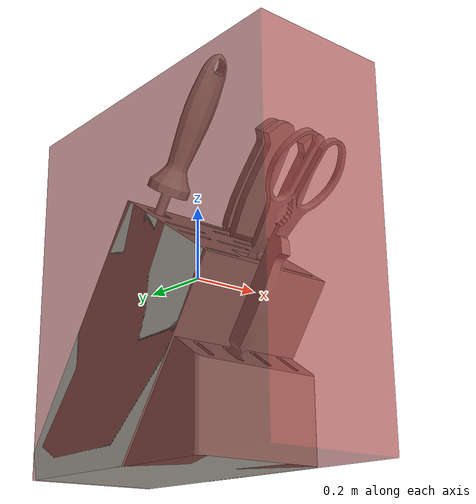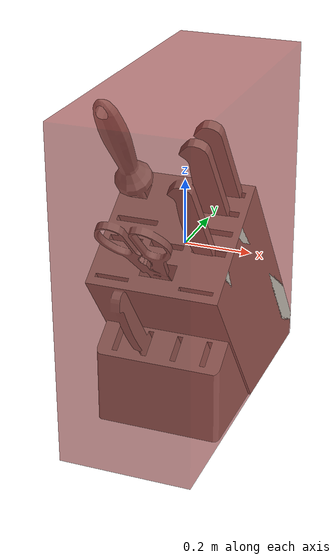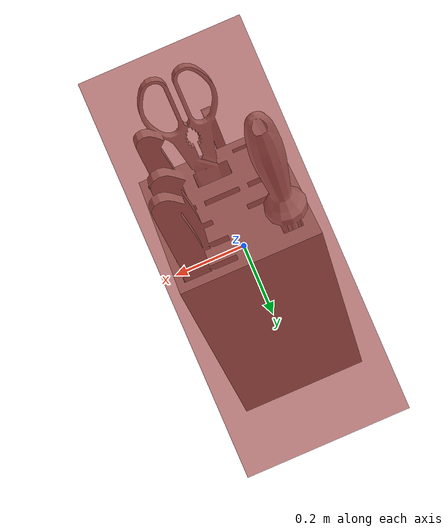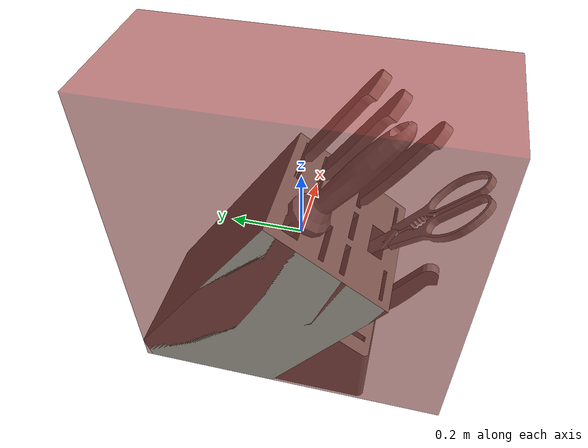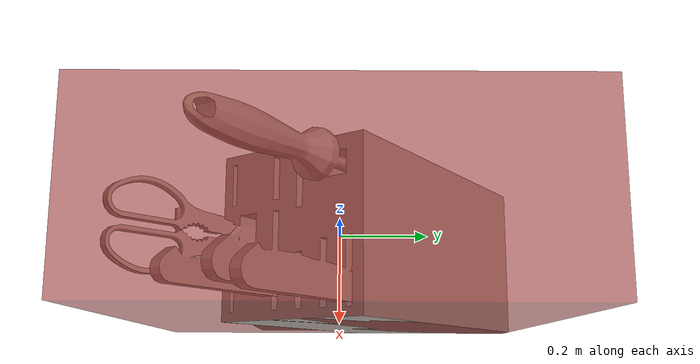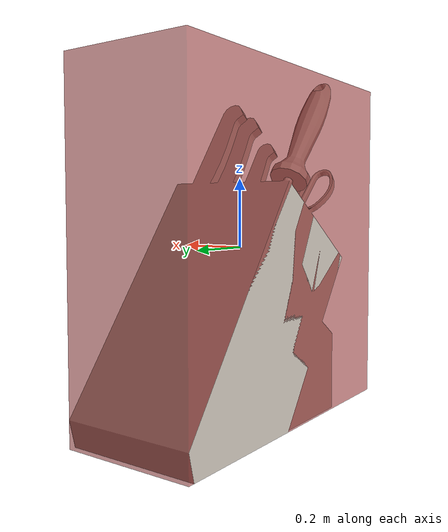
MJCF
<mujoco model="model">
  <asset>
    <texture file="visuals/material_0.png" name="tex-model" type="2d"/>
    <texture type="2d" name="image0" file="visuals/image0.png"/>
    <material name="model" reflectance="0.5" texrepeat="1 1" texture="tex-model" texuniform="false"/>
    <material name="Kitchen_Knife_Stand" texture="image0" specular="0.5" shininess="0.25"/>
    <mesh file="visuals/model_0.obj" name="model_0_vis" scale="1 1 1"/>
  </asset>
  <default>
    <default class="visual">
      <geom conaffinity="0" contype="0" group="1" type="mesh"/>
    </default>
    <default class="collision">
      <geom group="0" rgba="0.5 0 0 0.5"/>
    </default>
    <default class="region">
      <geom group="1" conaffinity="0" contype="0" rgba="0 1 0 0"/>
    </default>
  </default>
  <worldbody>
    <body>
      <!-- exterior bounding box points -->
      <!-- interior bounding box points -->
      <body name="object">
        <geom solimp="0.998 0.998 0.001" solref="0.001 1" density="100" friction="0.95 0.3 0.1" type="mesh" mesh="model_0_vis" material="Kitchen_Knife_Stand" class="visual"/>
        <geom class="collision" type="box" pos="0 0 0" size="0.1959167909652674 0.4770868847219263 0.5"/>
        <geom class="region" name="reg_main" type="box" pos="0.0 0.0 0.0" size="0.1959167909652674 0.4770868847219263 0.5"/>
      </body>
    </body>
  </worldbody>
</mujoco>
